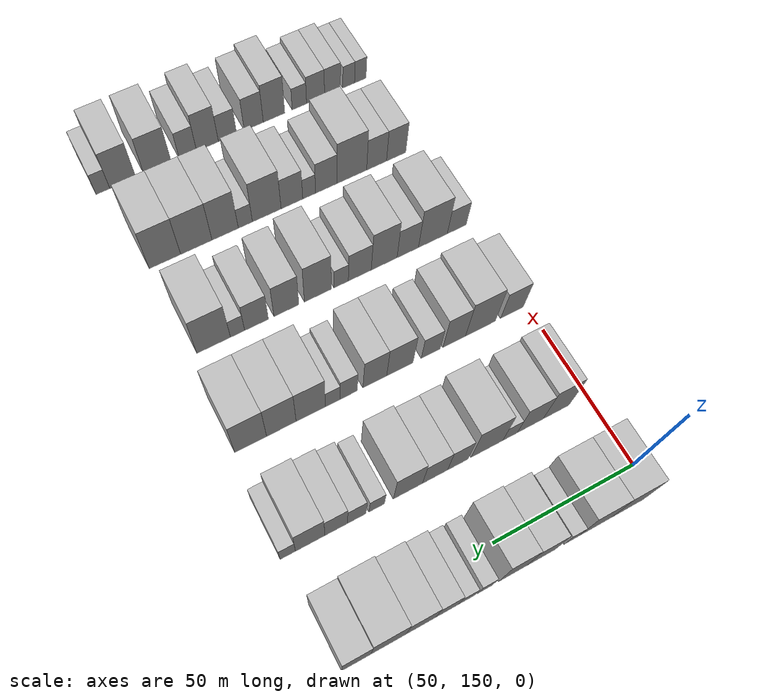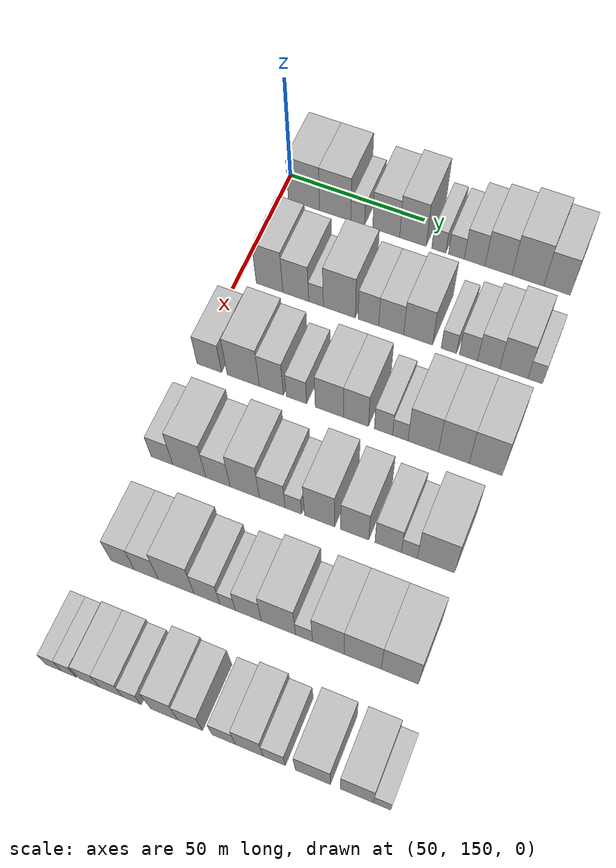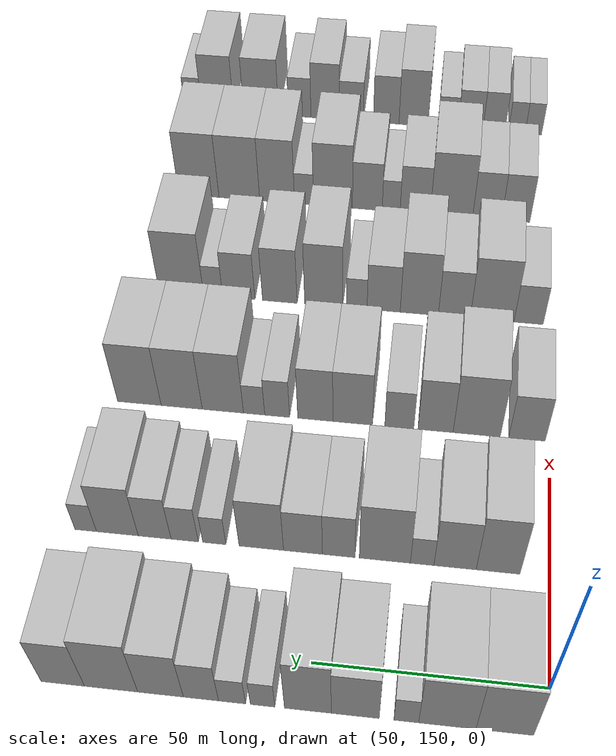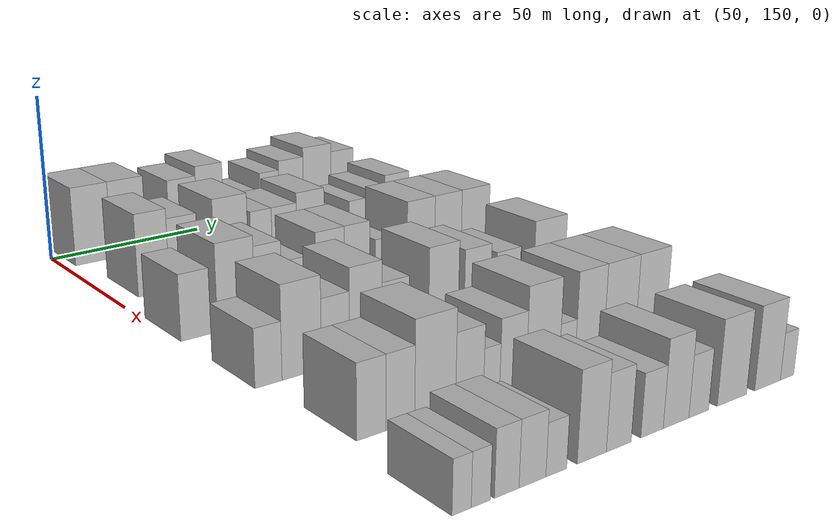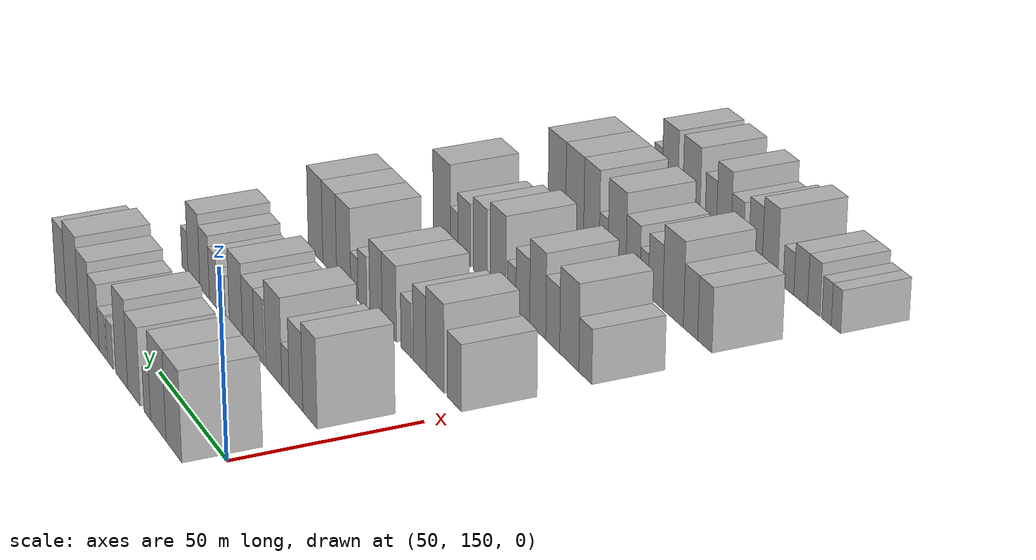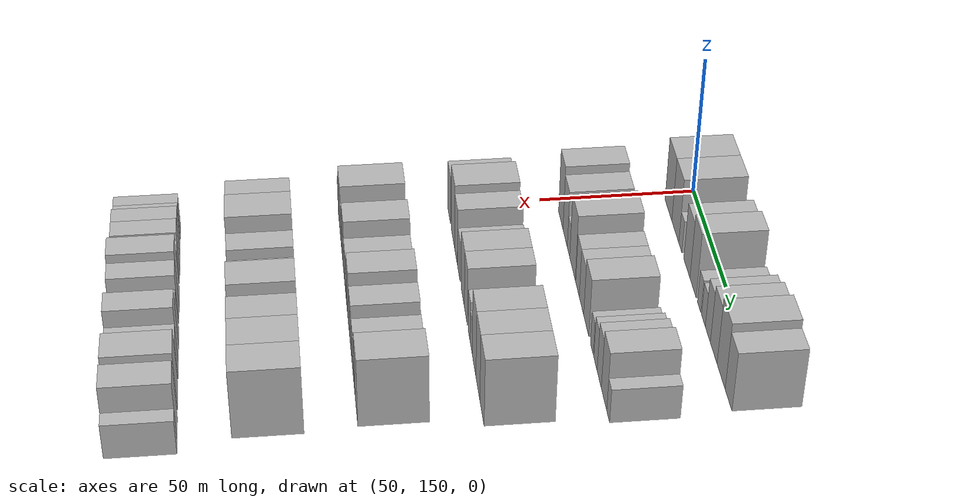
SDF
<sdf version="1.6">
 <world name="default">
  <model name="building_78">
   <static>1</static>
   <pose>50.0000 159.2090 0 0.000000 0.000000 0.000000</pose>
   <link name="link">
    <pose>0 0 12.00 0 0 0</pose>
    <collision name="collision"><geometry><box><size>20.0000 11.6799 24.0000</size></box></geometry></collision>
    <visual name="visual">
     <cast_shadows>0</cast_shadows>
     <geometry><box><size>20.0000 11.6799 24.0000</size></box></geometry>
     <material>
      <script>
       <uri>model://HANNAS_wall/materials/scripts</uri>
       <uri>model://HANNAS_wall/materials/textures</uri>
       <name>vrc/HANNAS_wall</name>
      </script>
     </material>
    </visual>
   </link>
  </model>
  <model name="building_79">
   <static>1</static>
   <pose>50.0000 170.8957 0 0.000000 0.000000 0.000000</pose>
   <link name="link">
    <pose>0 0 12.00 0 0 0</pose>
    <collision name="collision"><geometry><box><size>20.0000 11.6935 24.0000</size></box></geometry></collision>
    <visual name="visual">
     <cast_shadows>0</cast_shadows>
     <geometry><box><size>20.0000 11.6935 24.0000</size></box></geometry>
     <material>
      <script>
       <uri>model://HANNAS_wall/materials/scripts</uri>
       <uri>model://HANNAS_wall/materials/textures</uri>
       <name>vrc/HANNAS_wall</name>
      </script>
     </material>
    </visual>
   </link>
  </model>
  <model name="building_80">
   <static>1</static>
   <pose>50.0000 179.2679 0 0.000000 0.000000 0.000000</pose>
   <link name="link">
    <pose>0 0 6.00 0 0 0</pose>
    <collision name="collision"><geometry><box><size>20.0000 5.0509 12.0000</size></box></geometry></collision>
    <visual name="visual">
     <cast_shadows>0</cast_shadows>
     <geometry><box><size>20.0000 5.0509 12.0000</size></box></geometry>
     <material>
      <script>
       <uri>model://HANNAS_wall/materials/scripts</uri>
       <uri>model://HANNAS_wall/materials/textures</uri>
       <name>vrc/HANNAS_wall</name>
      </script>
     </material>
    </visual>
   </link>
  </model>
  <model name="building_81">
   <static>1</static>
   <pose>50.0000 189.7330 0 0.000000 0.000000 0.000000</pose>
   <link name="link">
    <pose>0 0 10.50 0 0 0</pose>
    <collision name="collision"><geometry><box><size>20.0000 9.8793 21.0000</size></box></geometry></collision>
    <visual name="visual">
     <cast_shadows>0</cast_shadows>
     <geometry><box><size>20.0000 9.8793 21.0000</size></box></geometry>
     <material>
      <script>
       <uri>model://HANNAS_wall/materials/scripts</uri>
       <uri>model://HANNAS_wall/materials/textures</uri>
       <name>vrc/HANNAS_wall</name>
      </script>
     </material>
    </visual>
   </link>
  </model>
  <model name="building_82">
   <static>1</static>
   <pose>50.0000 199.5018 0 0.000000 0.000000 0.000000</pose>
   <link name="link">
    <pose>0 0 12.00 0 0 0</pose>
    <collision name="collision"><geometry><box><size>20.0000 9.6583 24.0000</size></box></geometry></collision>
    <visual name="visual">
     <cast_shadows>0</cast_shadows>
     <geometry><box><size>20.0000 9.6583 24.0000</size></box></geometry>
     <material>
      <script>
       <uri>model://HANNAS_wall/materials/scripts</uri>
       <uri>model://HANNAS_wall/materials/textures</uri>
       <name>vrc/HANNAS_wall</name>
      </script>
     </material>
    </visual>
   </link>
  </model>
  <model name="building_83">
   <static>1</static>
   <pose>50.0000 208.8756 0 0.000000 0.000000 0.000000</pose>
   <link name="link">
    <pose>0 0 6.00 0 0 0</pose>
    <collision name="collision"><geometry><box><size>20.0000 5.0894 12.0000</size></box></geometry></collision>
    <visual name="visual">
     <cast_shadows>0</cast_shadows>
     <geometry><box><size>20.0000 5.0894 12.0000</size></box></geometry>
     <material>
      <script>
       <uri>model://HANNAS_wall/materials/scripts</uri>
       <uri>model://HANNAS_wall/materials/textures</uri>
       <name>vrc/HANNAS_wall</name>
      </script>
     </material>
    </visual>
   </link>
  </model>
  <model name="building_84">
   <static>1</static>
   <pose>50.0000 215.2379 0 0.000000 0.000000 0.000000</pose>
   <link name="link">
    <pose>0 0 6.00 0 0 0</pose>
    <collision name="collision"><geometry><box><size>20.0000 5.6352 12.0000</size></box></geometry></collision>
    <visual name="visual">
     <cast_shadows>0</cast_shadows>
     <geometry><box><size>20.0000 5.6352 12.0000</size></box></geometry>
     <material>
      <script>
       <uri>model://HANNAS_wall/materials/scripts</uri>
       <uri>model://HANNAS_wall/materials/textures</uri>
       <name>vrc/HANNAS_wall</name>
      </script>
     </material>
    </visual>
   </link>
  </model>
  <model name="building_85">
   <static>1</static>
   <pose>50.0000 221.7382 0 0.000000 0.000000 0.000000</pose>
   <link name="link">
    <pose>0 0 9.00 0 0 0</pose>
    <collision name="collision"><geometry><box><size>20.0000 7.3653 18.0000</size></box></geometry></collision>
    <visual name="visual">
     <cast_shadows>0</cast_shadows>
     <geometry><box><size>20.0000 7.3653 18.0000</size></box></geometry>
     <material>
      <script>
       <uri>model://HANNAS_wall/materials/scripts</uri>
       <uri>model://HANNAS_wall/materials/textures</uri>
       <name>vrc/HANNAS_wall</name>
      </script>
     </material>
    </visual>
   </link>
  </model>
  <model name="building_86">
   <static>1</static>
   <pose>50.0000 230.2159 0 0.000000 0.000000 0.000000</pose>
   <link name="link">
    <pose>0 0 10.50 0 0 0</pose>
    <collision name="collision"><geometry><box><size>20.0000 9.5903 21.0000</size></box></geometry></collision>
    <visual name="visual">
     <cast_shadows>0</cast_shadows>
     <geometry><box><size>20.0000 9.5903 21.0000</size></box></geometry>
     <material>
      <script>
       <uri>model://HANNAS_wall/materials/scripts</uri>
       <uri>model://HANNAS_wall/materials/textures</uri>
       <name>vrc/HANNAS_wall</name>
      </script>
     </material>
    </visual>
   </link>
  </model>
  <model name="building_87">
   <static>1</static>
   <pose>50.0000 240.6482 0 0.000000 0.000000 0.000000</pose>
   <link name="link">
    <pose>0 0 12.00 0 0 0</pose>
    <collision name="collision"><geometry><box><size>20.0000 11.2742 24.0000</size></box></geometry></collision>
    <visual name="visual">
     <cast_shadows>0</cast_shadows>
     <geometry><box><size>20.0000 11.2742 24.0000</size></box></geometry>
     <material>
      <script>
       <uri>model://HANNAS_wall/materials/scripts</uri>
       <uri>model://HANNAS_wall/materials/textures</uri>
       <name>vrc/HANNAS_wall</name>
      </script>
     </material>
    </visual>
   </link>
  </model>
  <model name="building_88">
   <static>1</static>
   <pose>50.0000 250.9048 0 0.000000 0.000000 0.000000</pose>
   <link name="link">
    <pose>0 0 10.50 0 0 0</pose>
    <collision name="collision"><geometry><box><size>20.0000 9.2390 21.0000</size></box></geometry></collision>
    <visual name="visual">
     <cast_shadows>0</cast_shadows>
     <geometry><box><size>20.0000 9.2390 21.0000</size></box></geometry>
     <material>
      <script>
       <uri>model://HANNAS_wall/materials/scripts</uri>
       <uri>model://HANNAS_wall/materials/textures</uri>
       <name>vrc/HANNAS_wall</name>
      </script>
     </material>
    </visual>
   </link>
  </model>
  <model name="building_204">
   <static>1</static>
   <pose>85.0000 161.4712 0 0.000000 0.000000 0.000000</pose>
   <link name="link">
    <pose>0 0 12.00 0 0 0</pose>
    <collision name="collision"><geometry><box><size>20.0000 9.6793 24.0000</size></box></geometry></collision>
    <visual name="visual">
     <cast_shadows>0</cast_shadows>
     <geometry><box><size>20.0000 9.6793 24.0000</size></box></geometry>
     <material>
      <script>
       <uri>model://HANNAS_wall/materials/scripts</uri>
       <uri>model://HANNAS_wall/materials/textures</uri>
       <name>vrc/HANNAS_wall</name>
      </script>
     </material>
    </visual>
   </link>
  </model>
  <model name="building_205">
   <static>1</static>
   <pose>85.0000 170.9865 0 0.000000 0.000000 0.000000</pose>
   <link name="link">
    <pose>0 0 10.50 0 0 0</pose>
    <collision name="collision"><geometry><box><size>20.0000 9.3513 21.0000</size></box></geometry></collision>
    <visual name="visual">
     <cast_shadows>0</cast_shadows>
     <geometry><box><size>20.0000 9.3513 21.0000</size></box></geometry>
     <material>
      <script>
       <uri>model://HANNAS_wall/materials/scripts</uri>
       <uri>model://HANNAS_wall/materials/textures</uri>
       <name>vrc/HANNAS_wall</name>
      </script>
     </material>
    </visual>
   </link>
  </model>
  <model name="building_206">
   <static>1</static>
   <pose>85.0000 178.2855 0 0.000000 0.000000 0.000000</pose>
   <link name="link">
    <pose>0 0 6.00 0 0 0</pose>
    <collision name="collision"><geometry><box><size>20.0000 5.2468 12.0000</size></box></geometry></collision>
    <visual name="visual">
     <cast_shadows>0</cast_shadows>
     <geometry><box><size>20.0000 5.2468 12.0000</size></box></geometry>
     <material>
      <script>
       <uri>model://HANNAS_wall/materials/scripts</uri>
       <uri>model://HANNAS_wall/materials/textures</uri>
       <name>vrc/HANNAS_wall</name>
      </script>
     </material>
    </visual>
   </link>
  </model>
  <model name="building_207">
   <static>1</static>
   <pose>85.0000 186.6110 0 0.000000 0.000000 0.000000</pose>
   <link name="link">
    <pose>0 0 12.00 0 0 0</pose>
    <collision name="collision"><geometry><box><size>20.0000 11.4042 24.0000</size></box></geometry></collision>
    <visual name="visual">
     <cast_shadows>0</cast_shadows>
     <geometry><box><size>20.0000 11.4042 24.0000</size></box></geometry>
     <material>
      <script>
       <uri>model://HANNAS_wall/materials/scripts</uri>
       <uri>model://HANNAS_wall/materials/textures</uri>
       <name>vrc/HANNAS_wall</name>
      </script>
     </material>
    </visual>
   </link>
  </model>
  <model name="building_208">
   <static>1</static>
   <pose>85.0000 196.9494 0 0.000000 0.000000 0.000000</pose>
   <link name="link">
    <pose>0 0 9.00 0 0 0</pose>
    <collision name="collision"><geometry><box><size>20.0000 7.2724 18.0000</size></box></geometry></collision>
    <visual name="visual">
     <cast_shadows>0</cast_shadows>
     <geometry><box><size>20.0000 7.2724 18.0000</size></box></geometry>
     <material>
      <script>
       <uri>model://HANNAS_wall/materials/scripts</uri>
       <uri>model://HANNAS_wall/materials/textures</uri>
       <name>vrc/HANNAS_wall</name>
      </script>
     </material>
    </visual>
   </link>
  </model>
  <model name="building_209">
   <static>1</static>
   <pose>85.0000 204.9795 0 0.000000 0.000000 0.000000</pose>
   <link name="link">
    <pose>0 0 9.00 0 0 0</pose>
    <collision name="collision"><geometry><box><size>20.0000 8.7878 18.0000</size></box></geometry></collision>
    <visual name="visual">
     <cast_shadows>0</cast_shadows>
     <geometry><box><size>20.0000 8.7878 18.0000</size></box></geometry>
     <material>
      <script>
       <uri>model://HANNAS_wall/materials/scripts</uri>
       <uri>model://HANNAS_wall/materials/textures</uri>
       <name>vrc/HANNAS_wall</name>
      </script>
     </material>
    </visual>
   </link>
  </model>
  <model name="building_210">
   <static>1</static>
   <pose>85.0000 214.4012 0 0.000000 0.000000 0.000000</pose>
   <link name="link">
    <pose>0 0 10.50 0 0 0</pose>
    <collision name="collision"><geometry><box><size>20.0000 10.0556 21.0000</size></box></geometry></collision>
    <visual name="visual">
     <cast_shadows>0</cast_shadows>
     <geometry><box><size>20.0000 10.0556 21.0000</size></box></geometry>
     <material>
      <script>
       <uri>model://HANNAS_wall/materials/scripts</uri>
       <uri>model://HANNAS_wall/materials/textures</uri>
       <name>vrc/HANNAS_wall</name>
      </script>
     </material>
    </visual>
   </link>
  </model>
  <model name="building_211">
   <static>1</static>
   <pose>85.0000 225.0736 0 0.000000 0.000000 0.000000</pose>
   <link name="link">
    <pose>0 0 6.00 0 0 0</pose>
    <collision name="collision"><geometry><box><size>20.0000 5.2892 12.0000</size></box></geometry></collision>
    <visual name="visual">
     <cast_shadows>0</cast_shadows>
     <geometry><box><size>20.0000 5.2892 12.0000</size></box></geometry>
     <material>
      <script>
       <uri>model://HANNAS_wall/materials/scripts</uri>
       <uri>model://HANNAS_wall/materials/textures</uri>
       <name>vrc/HANNAS_wall</name>
      </script>
     </material>
    </visual>
   </link>
  </model>
  <model name="building_212">
   <static>1</static>
   <pose>85.0000 231.8441 0 0.000000 0.000000 0.000000</pose>
   <link name="link">
    <pose>0 0 7.50 0 0 0</pose>
    <collision name="collision"><geometry><box><size>20.0000 6.2518 15.0000</size></box></geometry></collision>
    <visual name="visual">
     <cast_shadows>0</cast_shadows>
     <geometry><box><size>20.0000 6.2518 15.0000</size></box></geometry>
     <material>
      <script>
       <uri>model://HANNAS_wall/materials/scripts</uri>
       <uri>model://HANNAS_wall/materials/textures</uri>
       <name>vrc/HANNAS_wall</name>
      </script>
     </material>
    </visual>
   </link>
  </model>
  <model name="building_213">
   <static>1</static>
   <pose>85.0000 238.7311 0 0.000000 0.000000 0.000000</pose>
   <link name="link">
    <pose>0 0 9.00 0 0 0</pose>
    <collision name="collision"><geometry><box><size>20.0000 7.5223 18.0000</size></box></geometry></collision>
    <visual name="visual">
     <cast_shadows>0</cast_shadows>
     <geometry><box><size>20.0000 7.5223 18.0000</size></box></geometry>
     <material>
      <script>
       <uri>model://HANNAS_wall/materials/scripts</uri>
       <uri>model://HANNAS_wall/materials/textures</uri>
       <name>vrc/HANNAS_wall</name>
      </script>
     </material>
    </visual>
   </link>
  </model>
  <model name="building_214">
   <static>1</static>
   <pose>85.0000 247.3022 0 0.000000 0.000000 0.000000</pose>
   <link name="link">
    <pose>0 0 10.50 0 0 0</pose>
    <collision name="collision"><geometry><box><size>20.0000 9.6198 21.0000</size></box></geometry></collision>
    <visual name="visual">
     <cast_shadows>0</cast_shadows>
     <geometry><box><size>20.0000 9.6198 21.0000</size></box></geometry>
     <material>
      <script>
       <uri>model://HANNAS_wall/materials/scripts</uri>
       <uri>model://HANNAS_wall/materials/textures</uri>
       <name>vrc/HANNAS_wall</name>
      </script>
     </material>
    </visual>
   </link>
  </model>
  <model name="building_215">
   <static>1</static>
   <pose>85.0000 254.6012 0 0.000000 0.000000 0.000000</pose>
   <link name="link">
    <pose>0 0 6.00 0 0 0</pose>
    <collision name="collision"><geometry><box><size>20.0000 4.9783 12.0000</size></box></geometry></collision>
    <visual name="visual">
     <cast_shadows>0</cast_shadows>
     <geometry><box><size>20.0000 4.9783 12.0000</size></box></geometry>
     <material>
      <script>
       <uri>model://HANNAS_wall/materials/scripts</uri>
       <uri>model://HANNAS_wall/materials/textures</uri>
       <name>vrc/HANNAS_wall</name>
      </script>
     </material>
    </visual>
   </link>
  </model>
  <model name="building_336">
   <static>1</static>
   <pose>120.0000 155.4612 0 0.000000 0.000000 0.000000</pose>
   <link name="link">
    <pose>0 0 9.00 0 0 0</pose>
    <collision name="collision"><geometry><box><size>20.0000 8.6960 18.0000</size></box></geometry></collision>
    <visual name="visual">
     <cast_shadows>0</cast_shadows>
     <geometry><box><size>20.0000 8.6960 18.0000</size></box></geometry>
     <material>
      <script>
       <uri>model://HANNAS_wall/materials/scripts</uri>
       <uri>model://HANNAS_wall/materials/textures</uri>
       <name>vrc/HANNAS_wall</name>
      </script>
     </material>
    </visual>
   </link>
  </model>
  <model name="building_337">
   <static>1</static>
   <pose>120.0000 167.4629 0 0.000000 0.000000 0.000000</pose>
   <link name="link">
    <pose>0 0 12.00 0 0 0</pose>
    <collision name="collision"><geometry><box><size>20.0000 11.3075 24.0000</size></box></geometry></collision>
    <visual name="visual">
     <cast_shadows>0</cast_shadows>
     <geometry><box><size>20.0000 11.3075 24.0000</size></box></geometry>
     <material>
      <script>
       <uri>model://HANNAS_wall/materials/scripts</uri>
       <uri>model://HANNAS_wall/materials/textures</uri>
       <name>vrc/HANNAS_wall</name>
      </script>
     </material>
    </visual>
   </link>
  </model>
  <model name="building_338">
   <static>1</static>
   <pose>120.0000 177.3368 0 0.000000 0.000000 0.000000</pose>
   <link name="link">
    <pose>0 0 10.50 0 0 0</pose>
    <collision name="collision"><geometry><box><size>20.0000 8.4403 21.0000</size></box></geometry></collision>
    <visual name="visual">
     <cast_shadows>0</cast_shadows>
     <geometry><box><size>20.0000 8.4403 21.0000</size></box></geometry>
     <material>
      <script>
       <uri>model://HANNAS_wall/materials/scripts</uri>
       <uri>model://HANNAS_wall/materials/textures</uri>
       <name>vrc/HANNAS_wall</name>
      </script>
     </material>
    </visual>
   </link>
  </model>
  <model name="building_339">
   <static>1</static>
   <pose>120.0000 186.0639 0 0.000000 0.000000 0.000000</pose>
   <link name="link">
    <pose>0 0 7.50 0 0 0</pose>
    <collision name="collision"><geometry><box><size>20.0000 7.0139 15.0000</size></box></geometry></collision>
    <visual name="visual">
     <cast_shadows>0</cast_shadows>
     <geometry><box><size>20.0000 7.0139 15.0000</size></box></geometry>
     <material>
      <script>
       <uri>model://HANNAS_wall/materials/scripts</uri>
       <uri>model://HANNAS_wall/materials/textures</uri>
       <name>vrc/HANNAS_wall</name>
      </script>
     </material>
    </visual>
   </link>
  </model>
  <model name="building_340">
   <static>1</static>
   <pose>120.0000 197.3647 0 0.000000 0.000000 0.000000</pose>
   <link name="link">
    <pose>0 0 10.50 0 0 0</pose>
    <collision name="collision"><geometry><box><size>20.0000 9.5877 21.0000</size></box></geometry></collision>
    <visual name="visual">
     <cast_shadows>0</cast_shadows>
     <geometry><box><size>20.0000 9.5877 21.0000</size></box></geometry>
     <material>
      <script>
       <uri>model://HANNAS_wall/materials/scripts</uri>
       <uri>model://HANNAS_wall/materials/textures</uri>
       <name>vrc/HANNAS_wall</name>
      </script>
     </material>
    </visual>
   </link>
  </model>
  <model name="building_341">
   <static>1</static>
   <pose>120.0000 206.4398 0 0.000000 0.000000 0.000000</pose>
   <link name="link">
    <pose>0 0 10.50 0 0 0</pose>
    <collision name="collision"><geometry><box><size>20.0000 8.5627 21.0000</size></box></geometry></collision>
    <visual name="visual">
     <cast_shadows>0</cast_shadows>
     <geometry><box><size>20.0000 8.5627 21.0000</size></box></geometry>
     <material>
      <script>
       <uri>model://HANNAS_wall/materials/scripts</uri>
       <uri>model://HANNAS_wall/materials/textures</uri>
       <name>vrc/HANNAS_wall</name>
      </script>
     </material>
    </visual>
   </link>
  </model>
  <model name="building_342">
   <static>1</static>
   <pose>120.0000 215.7708 0 0.000000 0.000000 0.000000</pose>
   <link name="link">
    <pose>0 0 7.50 0 0 0</pose>
    <collision name="collision"><geometry><box><size>20.0000 6.0992 15.0000</size></box></geometry></collision>
    <visual name="visual">
     <cast_shadows>0</cast_shadows>
     <geometry><box><size>20.0000 6.0992 15.0000</size></box></geometry>
     <material>
      <script>
       <uri>model://HANNAS_wall/materials/scripts</uri>
       <uri>model://HANNAS_wall/materials/textures</uri>
       <name>vrc/HANNAS_wall</name>
      </script>
     </material>
    </visual>
   </link>
  </model>
  <model name="building_343">
   <static>1</static>
   <pose>120.0000 221.4237 0 0.000000 0.000000 0.000000</pose>
   <link name="link">
    <pose>0 0 6.00 0 0 0</pose>
    <collision name="collision"><geometry><box><size>20.0000 5.2066 12.0000</size></box></geometry></collision>
    <visual name="visual">
     <cast_shadows>0</cast_shadows>
     <geometry><box><size>20.0000 5.2066 12.0000</size></box></geometry>
     <material>
      <script>
       <uri>model://HANNAS_wall/materials/scripts</uri>
       <uri>model://HANNAS_wall/materials/textures</uri>
       <name>vrc/HANNAS_wall</name>
      </script>
     </material>
    </visual>
   </link>
  </model>
  <model name="building_344">
   <static>1</static>
   <pose>120.0000 229.1089 0 0.000000 0.000000 0.000000</pose>
   <link name="link">
    <pose>0 0 12.00 0 0 0</pose>
    <collision name="collision"><geometry><box><size>20.0000 10.1638 24.0000</size></box></geometry></collision>
    <visual name="visual">
     <cast_shadows>0</cast_shadows>
     <geometry><box><size>20.0000 10.1638 24.0000</size></box></geometry>
     <material>
      <script>
       <uri>model://HANNAS_wall/materials/scripts</uri>
       <uri>model://HANNAS_wall/materials/textures</uri>
       <name>vrc/HANNAS_wall</name>
      </script>
     </material>
    </visual>
   </link>
  </model>
  <model name="building_345">
   <static>1</static>
   <pose>120.0000 239.2730 0 0.000000 0.000000 0.000000</pose>
   <link name="link">
    <pose>0 0 12.00 0 0 0</pose>
    <collision name="collision"><geometry><box><size>20.0000 10.1644 24.0000</size></box></geometry></collision>
    <visual name="visual">
     <cast_shadows>0</cast_shadows>
     <geometry><box><size>20.0000 10.1644 24.0000</size></box></geometry>
     <material>
      <script>
       <uri>model://HANNAS_wall/materials/scripts</uri>
       <uri>model://HANNAS_wall/materials/textures</uri>
       <name>vrc/HANNAS_wall</name>
      </script>
     </material>
    </visual>
   </link>
  </model>
  <model name="building_346">
   <static>1</static>
   <pose>120.0000 249.7687 0 0.000000 0.000000 0.000000</pose>
   <link name="link">
    <pose>0 0 12.00 0 0 0</pose>
    <collision name="collision"><geometry><box><size>20.0000 10.8271 24.0000</size></box></geometry></collision>
    <visual name="visual">
     <cast_shadows>0</cast_shadows>
     <geometry><box><size>20.0000 10.8271 24.0000</size></box></geometry>
     <material>
      <script>
       <uri>model://HANNAS_wall/materials/scripts</uri>
       <uri>model://HANNAS_wall/materials/textures</uri>
       <name>vrc/HANNAS_wall</name>
      </script>
     </material>
    </visual>
   </link>
  </model>
  <model name="building_468">
   <static>1</static>
   <pose>155.0000 155.4062 0 0.000000 0.000000 0.000000</pose>
   <link name="link">
    <pose>0 0 7.50 0 0 0</pose>
    <collision name="collision"><geometry><box><size>20.0000 7.4724 15.0000</size></box></geometry></collision>
    <visual name="visual">
     <cast_shadows>0</cast_shadows>
     <geometry><box><size>20.0000 7.4724 15.0000</size></box></geometry>
     <material>
      <script>
       <uri>model://HANNAS_wall/materials/scripts</uri>
       <uri>model://HANNAS_wall/materials/textures</uri>
       <name>vrc/HANNAS_wall</name>
      </script>
     </material>
    </visual>
   </link>
  </model>
  <model name="building_469">
   <static>1</static>
   <pose>155.0000 164.7751 0 0.000000 0.000000 0.000000</pose>
   <link name="link">
    <pose>0 0 12.00 0 0 0</pose>
    <collision name="collision"><geometry><box><size>20.0000 11.2653 24.0000</size></box></geometry></collision>
    <visual name="visual">
     <cast_shadows>0</cast_shadows>
     <geometry><box><size>20.0000 11.2653 24.0000</size></box></geometry>
     <material>
      <script>
       <uri>model://HANNAS_wall/materials/scripts</uri>
       <uri>model://HANNAS_wall/materials/textures</uri>
       <name>vrc/HANNAS_wall</name>
      </script>
     </material>
    </visual>
   </link>
  </model>
  <model name="building_470">
   <static>1</static>
   <pose>155.0000 174.5382 0 0.000000 0.000000 0.000000</pose>
   <link name="link">
    <pose>0 0 9.00 0 0 0</pose>
    <collision name="collision"><geometry><box><size>20.0000 8.2609 18.0000</size></box></geometry></collision>
    <visual name="visual">
     <cast_shadows>0</cast_shadows>
     <geometry><box><size>20.0000 8.2609 18.0000</size></box></geometry>
     <material>
      <script>
       <uri>model://HANNAS_wall/materials/scripts</uri>
       <uri>model://HANNAS_wall/materials/textures</uri>
       <name>vrc/HANNAS_wall</name>
      </script>
     </material>
    </visual>
   </link>
  </model>
  <model name="building_471">
   <static>1</static>
   <pose>155.0000 183.6025 0 0.000000 0.000000 0.000000</pose>
   <link name="link">
    <pose>0 0 12.00 0 0 0</pose>
    <collision name="collision"><geometry><box><size>20.0000 9.8678 24.0000</size></box></geometry></collision>
    <visual name="visual">
     <cast_shadows>0</cast_shadows>
     <geometry><box><size>20.0000 9.8678 24.0000</size></box></geometry>
     <material>
      <script>
       <uri>model://HANNAS_wall/materials/scripts</uri>
       <uri>model://HANNAS_wall/materials/textures</uri>
       <name>vrc/HANNAS_wall</name>
      </script>
     </material>
    </visual>
   </link>
  </model>
  <model name="building_472">
   <static>1</static>
   <pose>155.0000 192.8467 0 0.000000 0.000000 0.000000</pose>
   <link name="link">
    <pose>0 0 9.00 0 0 0</pose>
    <collision name="collision"><geometry><box><size>20.0000 8.6207 18.0000</size></box></geometry></collision>
    <visual name="visual">
     <cast_shadows>0</cast_shadows>
     <geometry><box><size>20.0000 8.6207 18.0000</size></box></geometry>
     <material>
      <script>
       <uri>model://HANNAS_wall/materials/scripts</uri>
       <uri>model://HANNAS_wall/materials/textures</uri>
       <name>vrc/HANNAS_wall</name>
      </script>
     </material>
    </visual>
   </link>
  </model>
  <model name="building_473">
   <static>1</static>
   <pose>155.0000 199.8433 0 0.000000 0.000000 0.000000</pose>
   <link name="link">
    <pose>0 0 6.00 0 0 0</pose>
    <collision name="collision"><geometry><box><size>20.0000 5.3726 12.0000</size></box></geometry></collision>
    <visual name="visual">
     <cast_shadows>0</cast_shadows>
     <geometry><box><size>20.0000 5.3726 12.0000</size></box></geometry>
     <material>
      <script>
       <uri>model://HANNAS_wall/materials/scripts</uri>
       <uri>model://HANNAS_wall/materials/textures</uri>
       <name>vrc/HANNAS_wall</name>
      </script>
     </material>
    </visual>
   </link>
  </model>
  <model name="building_474">
   <static>1</static>
   <pose>155.0000 208.4955 0 0.000000 0.000000 0.000000</pose>
   <link name="link">
    <pose>0 0 12.00 0 0 0</pose>
    <collision name="collision"><geometry><box><size>20.0000 9.9317 24.0000</size></box></geometry></collision>
    <visual name="visual">
     <cast_shadows>0</cast_shadows>
     <geometry><box><size>20.0000 9.9317 24.0000</size></box></geometry>
     <material>
      <script>
       <uri>model://HANNAS_wall/materials/scripts</uri>
       <uri>model://HANNAS_wall/materials/textures</uri>
       <name>vrc/HANNAS_wall</name>
      </script>
     </material>
    </visual>
   </link>
  </model>
  <model name="building_475">
   <static>1</static>
   <pose>155.0000 220.0168 0 0.000000 0.000000 0.000000</pose>
   <link name="link">
    <pose>0 0 10.50 0 0 0</pose>
    <collision name="collision"><geometry><box><size>20.0000 9.1111 21.0000</size></box></geometry></collision>
    <visual name="visual">
     <cast_shadows>0</cast_shadows>
     <geometry><box><size>20.0000 9.1111 21.0000</size></box></geometry>
     <material>
      <script>
       <uri>model://HANNAS_wall/materials/scripts</uri>
       <uri>model://HANNAS_wall/materials/textures</uri>
       <name>vrc/HANNAS_wall</name>
      </script>
     </material>
    </visual>
   </link>
  </model>
  <model name="building_476">
   <static>1</static>
   <pose>155.0000 230.8321 0 0.000000 0.000000 0.000000</pose>
   <link name="link">
    <pose>0 0 9.00 0 0 0</pose>
    <collision name="collision"><geometry><box><size>20.0000 8.5194 18.0000</size></box></geometry></collision>
    <visual name="visual">
     <cast_shadows>0</cast_shadows>
     <geometry><box><size>20.0000 8.5194 18.0000</size></box></geometry>
     <material>
      <script>
       <uri>model://HANNAS_wall/materials/scripts</uri>
       <uri>model://HANNAS_wall/materials/textures</uri>
       <name>vrc/HANNAS_wall</name>
      </script>
     </material>
    </visual>
   </link>
  </model>
  <model name="building_477">
   <static>1</static>
   <pose>155.0000 237.6237 0 0.000000 0.000000 0.000000</pose>
   <link name="link">
    <pose>0 0 6.00 0 0 0</pose>
    <collision name="collision"><geometry><box><size>20.0000 5.0640 12.0000</size></box></geometry></collision>
    <visual name="visual">
     <cast_shadows>0</cast_shadows>
     <geometry><box><size>20.0000 5.0640 12.0000</size></box></geometry>
     <material>
      <script>
       <uri>model://HANNAS_wall/materials/scripts</uri>
       <uri>model://HANNAS_wall/materials/textures</uri>
       <name>vrc/HANNAS_wall</name>
      </script>
     </material>
    </visual>
   </link>
  </model>
  <model name="building_478">
   <static>1</static>
   <pose>155.0000 246.0914 0 0.000000 0.000000 0.000000</pose>
   <link name="link">
    <pose>0 0 12.00 0 0 0</pose>
    <collision name="collision"><geometry><box><size>20.0000 11.8714 24.0000</size></box></geometry></collision>
    <visual name="visual">
     <cast_shadows>0</cast_shadows>
     <geometry><box><size>20.0000 11.8714 24.0000</size></box></geometry>
     <material>
      <script>
       <uri>model://HANNAS_wall/materials/scripts</uri>
       <uri>model://HANNAS_wall/materials/textures</uri>
       <name>vrc/HANNAS_wall</name>
      </script>
     </material>
    </visual>
   </link>
  </model>
  <model name="building_592">
   <static>1</static>
   <pose>190.0000 159.2938 0 0.000000 0.000000 0.000000</pose>
   <link name="link">
    <pose>0 0 9.00 0 0 0</pose>
    <collision name="collision"><geometry><box><size>20.0000 7.7912 18.0000</size></box></geometry></collision>
    <visual name="visual">
     <cast_shadows>0</cast_shadows>
     <geometry><box><size>20.0000 7.7912 18.0000</size></box></geometry>
     <material>
      <script>
       <uri>model://HANNAS_wall/materials/scripts</uri>
       <uri>model://HANNAS_wall/materials/textures</uri>
       <name>vrc/HANNAS_wall</name>
      </script>
     </material>
    </visual>
   </link>
  </model>
  <model name="building_593">
   <static>1</static>
   <pose>190.0000 167.1642 0 0.000000 0.000000 0.000000</pose>
   <link name="link">
    <pose>0 0 9.00 0 0 0</pose>
    <collision name="collision"><geometry><box><size>20.0000 7.9496 18.0000</size></box></geometry></collision>
    <visual name="visual">
     <cast_shadows>0</cast_shadows>
     <geometry><box><size>20.0000 7.9496 18.0000</size></box></geometry>
     <material>
      <script>
       <uri>model://HANNAS_wall/materials/scripts</uri>
       <uri>model://HANNAS_wall/materials/textures</uri>
       <name>vrc/HANNAS_wall</name>
      </script>
     </material>
    </visual>
   </link>
  </model>
  <model name="building_594">
   <static>1</static>
   <pose>190.0000 176.9974 0 0.000000 0.000000 0.000000</pose>
   <link name="link">
    <pose>0 0 12.00 0 0 0</pose>
    <collision name="collision"><geometry><box><size>20.0000 11.7170 24.0000</size></box></geometry></collision>
    <visual name="visual">
     <cast_shadows>0</cast_shadows>
     <geometry><box><size>20.0000 11.7170 24.0000</size></box></geometry>
     <material>
      <script>
       <uri>model://HANNAS_wall/materials/scripts</uri>
       <uri>model://HANNAS_wall/materials/textures</uri>
       <name>vrc/HANNAS_wall</name>
      </script>
     </material>
    </visual>
   </link>
  </model>
  <model name="building_595">
   <static>1</static>
   <pose>190.0000 187.0472 0 0.000000 0.000000 0.000000</pose>
   <link name="link">
    <pose>0 0 9.00 0 0 0</pose>
    <collision name="collision"><geometry><box><size>20.0000 8.3826 18.0000</size></box></geometry></collision>
    <visual name="visual">
     <cast_shadows>0</cast_shadows>
     <geometry><box><size>20.0000 8.3826 18.0000</size></box></geometry>
     <material>
      <script>
       <uri>model://HANNAS_wall/materials/scripts</uri>
       <uri>model://HANNAS_wall/materials/textures</uri>
       <name>vrc/HANNAS_wall</name>
      </script>
     </material>
    </visual>
   </link>
  </model>
  <model name="building_596">
   <static>1</static>
   <pose>190.0000 193.7264 0 0.000000 0.000000 0.000000</pose>
   <link name="link">
    <pose>0 0 6.00 0 0 0</pose>
    <collision name="collision"><geometry><box><size>20.0000 4.9759 12.0000</size></box></geometry></collision>
    <visual name="visual">
     <cast_shadows>0</cast_shadows>
     <geometry><box><size>20.0000 4.9759 12.0000</size></box></geometry>
     <material>
      <script>
       <uri>model://HANNAS_wall/materials/scripts</uri>
       <uri>model://HANNAS_wall/materials/textures</uri>
       <name>vrc/HANNAS_wall</name>
      </script>
     </material>
    </visual>
   </link>
  </model>
  <model name="building_597">
   <static>1</static>
   <pose>190.0000 200.3754 0 0.000000 0.000000 0.000000</pose>
   <link name="link">
    <pose>0 0 9.00 0 0 0</pose>
    <collision name="collision"><geometry><box><size>20.0000 8.3221 18.0000</size></box></geometry></collision>
    <visual name="visual">
     <cast_shadows>0</cast_shadows>
     <geometry><box><size>20.0000 8.3221 18.0000</size></box></geometry>
     <material>
      <script>
       <uri>model://HANNAS_wall/materials/scripts</uri>
       <uri>model://HANNAS_wall/materials/textures</uri>
       <name>vrc/HANNAS_wall</name>
      </script>
     </material>
    </visual>
   </link>
  </model>
  <model name="building_598">
   <static>1</static>
   <pose>190.0000 209.9882 0 0.000000 0.000000 0.000000</pose>
   <link name="link">
    <pose>0 0 12.00 0 0 0</pose>
    <collision name="collision"><geometry><box><size>20.0000 10.9036 24.0000</size></box></geometry></collision>
    <visual name="visual">
     <cast_shadows>0</cast_shadows>
     <geometry><box><size>20.0000 10.9036 24.0000</size></box></geometry>
     <material>
      <script>
       <uri>model://HANNAS_wall/materials/scripts</uri>
       <uri>model://HANNAS_wall/materials/textures</uri>
       <name>vrc/HANNAS_wall</name>
      </script>
     </material>
    </visual>
   </link>
  </model>
  <model name="building_599">
   <static>1</static>
   <pose>190.0000 218.1046 0 0.000000 0.000000 0.000000</pose>
   <link name="link">
    <pose>0 0 6.00 0 0 0</pose>
    <collision name="collision"><geometry><box><size>20.0000 5.3291 12.0000</size></box></geometry></collision>
    <visual name="visual">
     <cast_shadows>0</cast_shadows>
     <geometry><box><size>20.0000 5.3291 12.0000</size></box></geometry>
     <material>
      <script>
       <uri>model://HANNAS_wall/materials/scripts</uri>
       <uri>model://HANNAS_wall/materials/textures</uri>
       <name>vrc/HANNAS_wall</name>
      </script>
     </material>
    </visual>
   </link>
  </model>
  <model name="building_600">
   <static>1</static>
   <pose>190.0000 225.6802 0 0.000000 0.000000 0.000000</pose>
   <link name="link">
    <pose>0 0 12.00 0 0 0</pose>
    <collision name="collision"><geometry><box><size>20.0000 9.8220 24.0000</size></box></geometry></collision>
    <visual name="visual">
     <cast_shadows>0</cast_shadows>
     <geometry><box><size>20.0000 9.8220 24.0000</size></box></geometry>
     <material>
      <script>
       <uri>model://HANNAS_wall/materials/scripts</uri>
       <uri>model://HANNAS_wall/materials/textures</uri>
       <name>vrc/HANNAS_wall</name>
      </script>
     </material>
    </visual>
   </link>
  </model>
  <model name="building_601">
   <static>1</static>
   <pose>190.0000 236.3677 0 0.000000 0.000000 0.000000</pose>
   <link name="link">
    <pose>0 0 12.00 0 0 0</pose>
    <collision name="collision"><geometry><box><size>20.0000 11.5531 24.0000</size></box></geometry></collision>
    <visual name="visual">
     <cast_shadows>0</cast_shadows>
     <geometry><box><size>20.0000 11.5531 24.0000</size></box></geometry>
     <material>
      <script>
       <uri>model://HANNAS_wall/materials/scripts</uri>
       <uri>model://HANNAS_wall/materials/textures</uri>
       <name>vrc/HANNAS_wall</name>
      </script>
     </material>
    </visual>
   </link>
  </model>
  <model name="building_602">
   <static>1</static>
   <pose>190.0000 247.8491 0 0.000000 0.000000 0.000000</pose>
   <link name="link">
    <pose>0 0 12.00 0 0 0</pose>
    <collision name="collision"><geometry><box><size>20.0000 11.4097 24.0000</size></box></geometry></collision>
    <visual name="visual">
     <cast_shadows>0</cast_shadows>
     <geometry><box><size>20.0000 11.4097 24.0000</size></box></geometry>
     <material>
      <script>
       <uri>model://HANNAS_wall/materials/scripts</uri>
       <uri>model://HANNAS_wall/materials/textures</uri>
       <name>vrc/HANNAS_wall</name>
      </script>
     </material>
    </visual>
   </link>
  </model>
  <model name="building_717">
   <static>1</static>
   <pose>225.0000 154.6715 0 0.000000 0.000000 0.000000</pose>
   <link name="link">
    <pose>0 0 6.00 0 0 0</pose>
    <collision name="collision"><geometry><box><size>20.0000 4.8081 12.0000</size></box></geometry></collision>
    <visual name="visual">
     <cast_shadows>0</cast_shadows>
     <geometry><box><size>20.0000 4.8081 12.0000</size></box></geometry>
     <material>
      <script>
       <uri>model://HANNAS_wall/materials/scripts</uri>
       <uri>model://HANNAS_wall/materials/textures</uri>
       <name>vrc/HANNAS_wall</name>
      </script>
     </material>
    </visual>
   </link>
  </model>
  <model name="building_718">
   <static>1</static>
   <pose>225.0000 159.5344 0 0.000000 0.000000 0.000000</pose>
   <link name="link">
    <pose>0 0 6.00 0 0 0</pose>
    <collision name="collision"><geometry><box><size>20.0000 4.9177 12.0000</size></box></geometry></collision>
    <visual name="visual">
     <cast_shadows>0</cast_shadows>
     <geometry><box><size>20.0000 4.9177 12.0000</size></box></geometry>
     <material>
      <script>
       <uri>model://HANNAS_wall/materials/scripts</uri>
       <uri>model://HANNAS_wall/materials/textures</uri>
       <name>vrc/HANNAS_wall</name>
      </script>
     </material>
    </visual>
   </link>
  </model>
  <model name="building_719">
   <static>1</static>
   <pose>225.0000 166.2441 0 0.000000 0.000000 0.000000</pose>
   <link name="link">
    <pose>0 0 7.50 0 0 0</pose>
    <collision name="collision"><geometry><box><size>20.0000 6.5018 15.0000</size></box></geometry></collision>
    <visual name="visual">
     <cast_shadows>0</cast_shadows>
     <geometry><box><size>20.0000 6.5018 15.0000</size></box></geometry>
     <material>
      <script>
       <uri>model://HANNAS_wall/materials/scripts</uri>
       <uri>model://HANNAS_wall/materials/textures</uri>
       <name>vrc/HANNAS_wall</name>
      </script>
     </material>
    </visual>
   </link>
  </model>
  <model name="building_720">
   <static>1</static>
   <pose>225.0000 173.1558 0 0.000000 0.000000 0.000000</pose>
   <link name="link">
    <pose>0 0 7.50 0 0 0</pose>
    <collision name="collision"><geometry><box><size>20.0000 7.3215 15.0000</size></box></geometry></collision>
    <visual name="visual">
     <cast_shadows>0</cast_shadows>
     <geometry><box><size>20.0000 7.3215 15.0000</size></box></geometry>
     <material>
      <script>
       <uri>model://HANNAS_wall/materials/scripts</uri>
       <uri>model://HANNAS_wall/materials/textures</uri>
       <name>vrc/HANNAS_wall</name>
      </script>
     </material>
    </visual>
   </link>
  </model>
  <model name="building_721">
   <static>1</static>
   <pose>225.0000 179.7387 0 0.000000 0.000000 0.000000</pose>
   <link name="link">
    <pose>0 0 6.00 0 0 0</pose>
    <collision name="collision"><geometry><box><size>20.0000 5.8443 12.0000</size></box></geometry></collision>
    <visual name="visual">
     <cast_shadows>0</cast_shadows>
     <geometry><box><size>20.0000 5.8443 12.0000</size></box></geometry>
     <material>
      <script>
       <uri>model://HANNAS_wall/materials/scripts</uri>
       <uri>model://HANNAS_wall/materials/textures</uri>
       <name>vrc/HANNAS_wall</name>
      </script>
     </material>
    </visual>
   </link>
  </model>
  <model name="building_722">
   <static>1</static>
   <pose>225.0000 189.9580 0 0.000000 0.000000 0.000000</pose>
   <link name="link">
    <pose>0 0 10.50 0 0 0</pose>
    <collision name="collision"><geometry><box><size>20.0000 8.5944 21.0000</size></box></geometry></collision>
    <visual name="visual">
     <cast_shadows>0</cast_shadows>
     <geometry><box><size>20.0000 8.5944 21.0000</size></box></geometry>
     <material>
      <script>
       <uri>model://HANNAS_wall/materials/scripts</uri>
       <uri>model://HANNAS_wall/materials/textures</uri>
       <name>vrc/HANNAS_wall</name>
      </script>
     </material>
    </visual>
   </link>
  </model>
  <model name="building_723">
   <static>1</static>
   <pose>225.0000 198.0489 0 0.000000 0.000000 0.000000</pose>
   <link name="link">
    <pose>0 0 9.00 0 0 0</pose>
    <collision name="collision"><geometry><box><size>20.0000 7.5874 18.0000</size></box></geometry></collision>
    <visual name="visual">
     <cast_shadows>0</cast_shadows>
     <geometry><box><size>20.0000 7.5874 18.0000</size></box></geometry>
     <material>
      <script>
       <uri>model://HANNAS_wall/materials/scripts</uri>
       <uri>model://HANNAS_wall/materials/textures</uri>
       <name>vrc/HANNAS_wall</name>
      </script>
     </material>
    </visual>
   </link>
  </model>
  <model name="building_724">
   <static>1</static>
   <pose>225.0000 208.4184 0 0.000000 0.000000 0.000000</pose>
   <link name="link">
    <pose>0 0 7.50 0 0 0</pose>
    <collision name="collision"><geometry><box><size>20.0000 7.1515 15.0000</size></box></geometry></collision>
    <visual name="visual">
     <cast_shadows>0</cast_shadows>
     <geometry><box><size>20.0000 7.1515 15.0000</size></box></geometry>
     <material>
      <script>
       <uri>model://HANNAS_wall/materials/scripts</uri>
       <uri>model://HANNAS_wall/materials/textures</uri>
       <name>vrc/HANNAS_wall</name>
      </script>
     </material>
    </visual>
   </link>
  </model>
  <model name="building_725">
   <static>1</static>
   <pose>225.0000 216.2346 0 0.000000 0.000000 0.000000</pose>
   <link name="link">
    <pose>0 0 10.50 0 0 0</pose>
    <collision name="collision"><geometry><box><size>20.0000 8.4810 21.0000</size></box></geometry></collision>
    <visual name="visual">
     <cast_shadows>0</cast_shadows>
     <geometry><box><size>20.0000 8.4810 21.0000</size></box></geometry>
     <material>
      <script>
       <uri>model://HANNAS_wall/materials/scripts</uri>
       <uri>model://HANNAS_wall/materials/textures</uri>
       <name>vrc/HANNAS_wall</name>
      </script>
     </material>
    </visual>
   </link>
  </model>
  <model name="building_726">
   <static>1</static>
   <pose>225.0000 223.8418 0 0.000000 0.000000 0.000000</pose>
   <link name="link">
    <pose>0 0 7.50 0 0 0</pose>
    <collision name="collision"><geometry><box><size>20.0000 6.7334 15.0000</size></box></geometry></collision>
    <visual name="visual">
     <cast_shadows>0</cast_shadows>
     <geometry><box><size>20.0000 6.7334 15.0000</size></box></geometry>
     <material>
      <script>
       <uri>model://HANNAS_wall/materials/scripts</uri>
       <uri>model://HANNAS_wall/materials/textures</uri>
       <name>vrc/HANNAS_wall</name>
      </script>
     </material>
    </visual>
   </link>
  </model>
  <model name="building_727">
   <static>1</static>
   <pose>225.0000 235.4471 0 0.000000 0.000000 0.000000</pose>
   <link name="link">
    <pose>0 0 10.50 0 0 0</pose>
    <collision name="collision"><geometry><box><size>20.0000 10.4772 21.0000</size></box></geometry></collision>
    <visual name="visual">
     <cast_shadows>0</cast_shadows>
     <geometry><box><size>20.0000 10.4772 21.0000</size></box></geometry>
     <material>
      <script>
       <uri>model://HANNAS_wall/materials/scripts</uri>
       <uri>model://HANNAS_wall/materials/textures</uri>
       <name>vrc/HANNAS_wall</name>
      </script>
     </material>
    </visual>
   </link>
  </model>
  <model name="building_728">
   <static>1</static>
   <pose>225.0000 248.5353 0 0.000000 0.000000 0.000000</pose>
   <link name="link">
    <pose>0 0 10.50 0 0 0</pose>
    <collision name="collision"><geometry><box><size>20.0000 9.6993 21.0000</size></box></geometry></collision>
    <visual name="visual">
     <cast_shadows>0</cast_shadows>
     <geometry><box><size>20.0000 9.6993 21.0000</size></box></geometry>
     <material>
      <script>
       <uri>model://HANNAS_wall/materials/scripts</uri>
       <uri>model://HANNAS_wall/materials/textures</uri>
       <name>vrc/HANNAS_wall</name>
      </script>
     </material>
    </visual>
   </link>
  </model>
  <model name="building_729">
   <static>1</static>
   <pose>225.0000 255.9567 0 0.000000 0.000000 0.000000</pose>
   <link name="link">
    <pose>0 0 6.00 0 0 0</pose>
    <collision name="collision"><geometry><box><size>20.0000 5.1434 12.0000</size></box></geometry></collision>
    <visual name="visual">
     <cast_shadows>0</cast_shadows>
     <geometry><box><size>20.0000 5.1434 12.0000</size></box></geometry>
     <material>
      <script>
       <uri>model://HANNAS_wall/materials/scripts</uri>
       <uri>model://HANNAS_wall/materials/textures</uri>
       <name>vrc/HANNAS_wall</name>
      </script>
     </material>
    </visual>
   </link>
  </model>
 </world>
</sdf>
